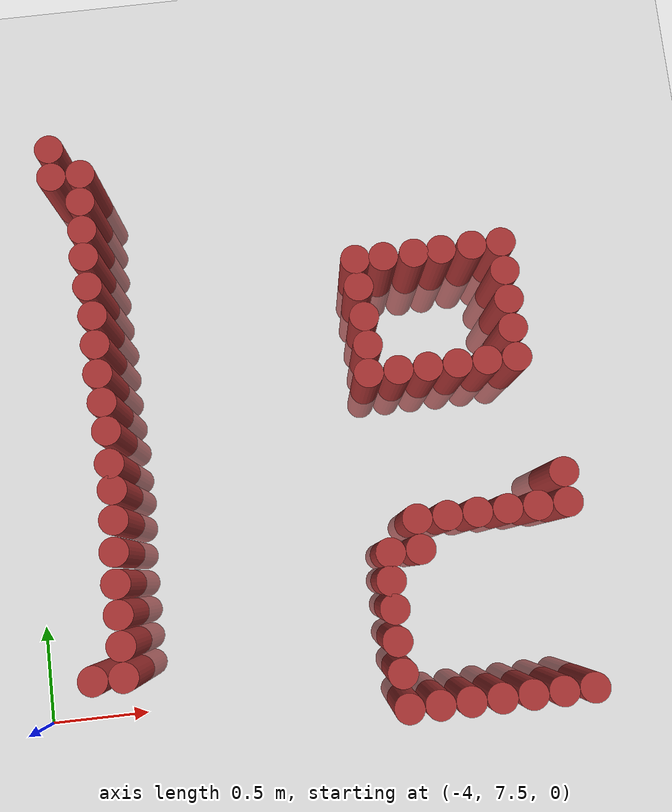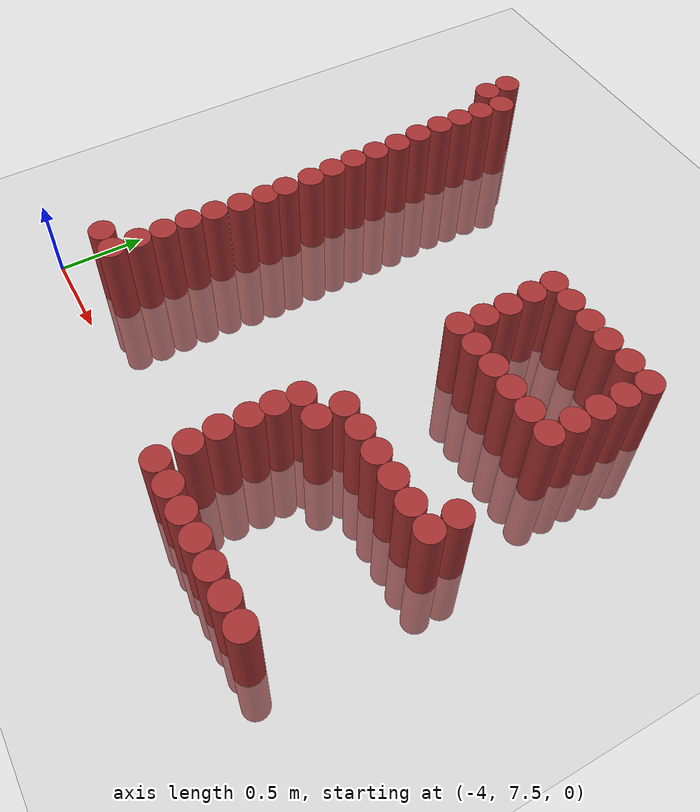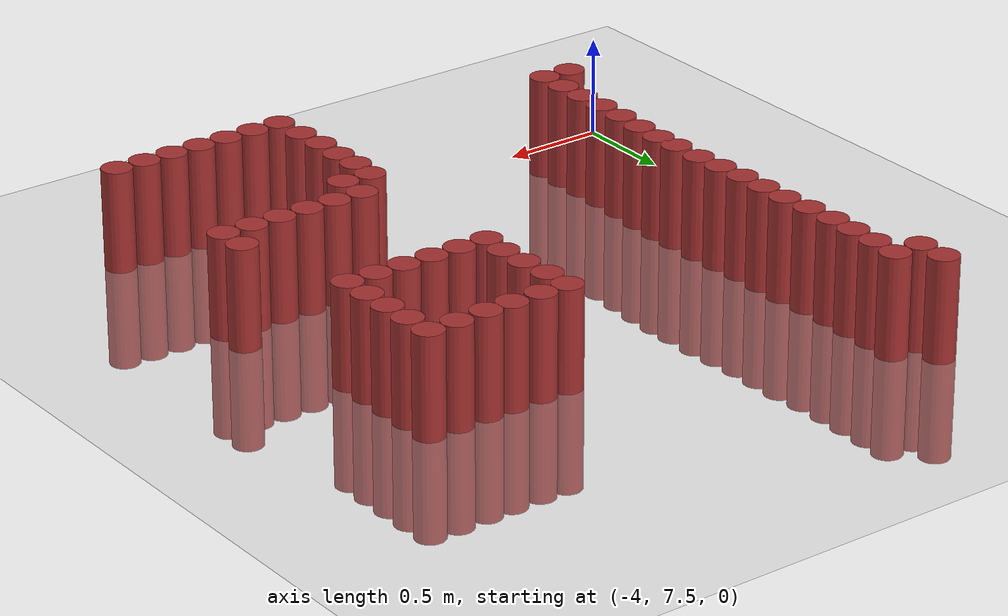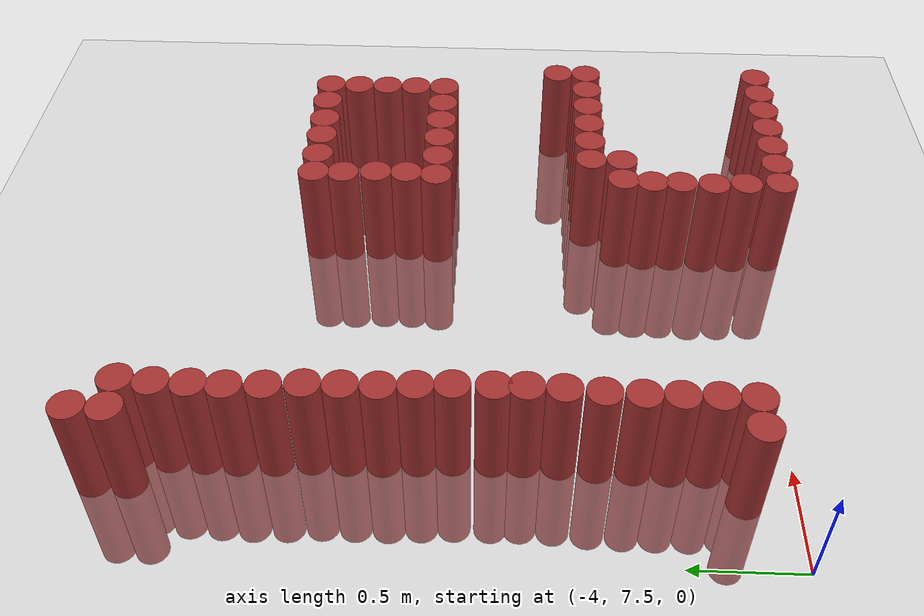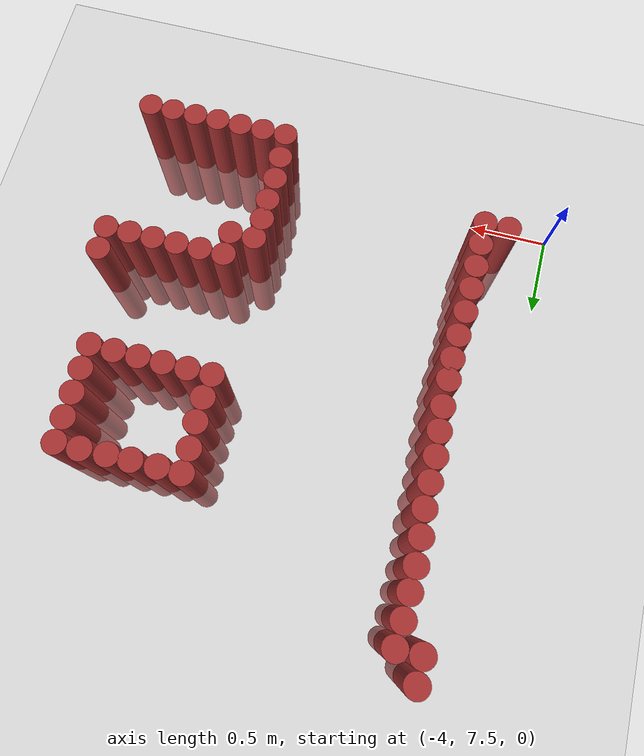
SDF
<sdf version="1.6">
 <world name="default">
  <model name="ground_plane">
   <static>1</static>
   <link name="link">
    <collision name="collision">
     <geometry><plane><normal>0 0 1</normal><size>100 100</size></plane></geometry>
     <surface><friction><ode><mu>100</mu><mu2>50</mu2></ode></friction></surface>
    </collision>
    <visual name="visual">
     <cast_shadows>0</cast_shadows>
     <geometry><plane><normal>0 0 1</normal><size>100 100</size></plane></geometry>
     <material>
      <script><uri>file://media/materials/scripts/gazebo.material</uri><name>Gazebo/Grey</name></script>
     </material>
    </visual>
   </link>
  </model>
  <model name="unit_cylinder_1161">
   <static>1</static>
   <pose>-3.675 7.725 0 0 -0 0</pose>
   <link name="link">
    <inertial>
     <mass>1</mass>
     <inertia><ixx>0.145833</ixx><ixy>0</ixy><ixz>0</ixz><iyy>0.145833</iyy><iyz>0</iyz><izz>0.125</izz></inertia>
    </inertial>
    <collision name="collision">
     <geometry><cylinder><radius>0.075</radius><length>1</length></cylinder></geometry>
    </collision>
    <visual name="visual">
     <geometry><cylinder><radius>0.075</radius><length>1</length></cylinder></geometry>
     <material><ambient>0.648 0.192 0.192 1</ambient><diffuse>0.648 0.192 0.192 1</diffuse></material>
     <material>
      <script><name>Gazebo/Grey</name><uri>file://media/materials/scripts/gazebo.material</uri></script>
     </material>
    </visual>
   </link>
  </model>
  <model name="unit_cylinder_1162">
   <static>1</static>
   <pose>-3.675 10.275 0 0 -0 0</pose>
   <link name="link">
    <inertial>
     <mass>1</mass>
     <inertia><ixx>0.145833</ixx><ixy>0</ixy><ixz>0</ixz><iyy>0.145833</iyy><iyz>0</iyz><izz>0.125</izz></inertia>
    </inertial>
    <collision name="collision">
     <geometry><cylinder><radius>0.075</radius><length>1</length></cylinder></geometry>
    </collision>
    <visual name="visual">
     <geometry><cylinder><radius>0.075</radius><length>1</length></cylinder></geometry>
     <material><ambient>0.648 0.192 0.192 1</ambient><diffuse>0.648 0.192 0.192 1</diffuse></material>
     <material>
      <script><name>Gazebo/Grey</name><uri>file://media/materials/scripts/gazebo.material</uri></script>
     </material>
    </visual>
   </link>
  </model>
  <model name="unit_cylinder_1163">
   <static>1</static>
   <pose>-3.675 10.425 0 0 -0 0</pose>
   <link name="link">
    <inertial>
     <mass>1</mass>
     <inertia><ixx>0.145833</ixx><ixy>0</ixy><ixz>0</ixz><iyy>0.145833</iyy><iyz>0</iyz><izz>0.125</izz></inertia>
    </inertial>
    <collision name="collision">
     <geometry><cylinder><radius>0.075</radius><length>1</length></cylinder></geometry>
    </collision>
    <visual name="visual">
     <geometry><cylinder><radius>0.075</radius><length>1</length></cylinder></geometry>
     <material><ambient>0.648 0.192 0.192 1</ambient><diffuse>0.648 0.192 0.192 1</diffuse></material>
     <material>
      <script><name>Gazebo/Grey</name><uri>file://media/materials/scripts/gazebo.material</uri></script>
     </material>
    </visual>
   </link>
  </model>
  <model name="unit_cylinder_1182">
   <static>1</static>
   <pose>-3.525 7.725 0 0 -0 0</pose>
   <link name="link">
    <inertial>
     <mass>1</mass>
     <inertia><ixx>0.145833</ixx><ixy>0</ixy><ixz>0</ixz><iyy>0.145833</iyy><iyz>0</iyz><izz>0.125</izz></inertia>
    </inertial>
    <collision name="collision">
     <geometry><cylinder><radius>0.075</radius><length>1</length></cylinder></geometry>
    </collision>
    <visual name="visual">
     <geometry><cylinder><radius>0.075</radius><length>1</length></cylinder></geometry>
     <material><ambient>0.648 0.192 0.192 1</ambient><diffuse>0.648 0.192 0.192 1</diffuse></material>
     <material>
      <script><name>Gazebo/Grey</name><uri>file://media/materials/scripts/gazebo.material</uri></script>
     </material>
    </visual>
   </link>
  </model>
  <model name="unit_cylinder_1183">
   <static>1</static>
   <pose>-3.525 7.875 0 0 -0 0</pose>
   <link name="link">
    <inertial>
     <mass>1</mass>
     <inertia><ixx>0.145833</ixx><ixy>0</ixy><ixz>0</ixz><iyy>0.145833</iyy><iyz>0</iyz><izz>0.125</izz></inertia>
    </inertial>
    <collision name="collision">
     <geometry><cylinder><radius>0.075</radius><length>1</length></cylinder></geometry>
    </collision>
    <visual name="visual">
     <geometry><cylinder><radius>0.075</radius><length>1</length></cylinder></geometry>
     <material><ambient>0.648 0.192 0.192 1</ambient><diffuse>0.648 0.192 0.192 1</diffuse></material>
     <material>
      <script><name>Gazebo/Grey</name><uri>file://media/materials/scripts/gazebo.material</uri></script>
     </material>
    </visual>
   </link>
  </model>
  <model name="unit_cylinder_1184">
   <static>1</static>
   <pose>-3.525 8.025 0 0 -0 0</pose>
   <link name="link">
    <inertial>
     <mass>1</mass>
     <inertia><ixx>0.145833</ixx><ixy>0</ixy><ixz>0</ixz><iyy>0.145833</iyy><iyz>0</iyz><izz>0.125</izz></inertia>
    </inertial>
    <collision name="collision">
     <geometry><cylinder><radius>0.075</radius><length>1</length></cylinder></geometry>
    </collision>
    <visual name="visual">
     <geometry><cylinder><radius>0.075</radius><length>1</length></cylinder></geometry>
     <material><ambient>0.648 0.192 0.192 1</ambient><diffuse>0.648 0.192 0.192 1</diffuse></material>
     <material>
      <script><name>Gazebo/Grey</name><uri>file://media/materials/scripts/gazebo.material</uri></script>
     </material>
    </visual>
   </link>
  </model>
  <model name="unit_cylinder_1185">
   <static>1</static>
   <pose>-3.525 8.175 0 0 -0 0</pose>
   <link name="link">
    <inertial>
     <mass>1</mass>
     <inertia><ixx>0.145833</ixx><ixy>0</ixy><ixz>0</ixz><iyy>0.145833</iyy><iyz>0</iyz><izz>0.125</izz></inertia>
    </inertial>
    <collision name="collision">
     <geometry><cylinder><radius>0.075</radius><length>1</length></cylinder></geometry>
    </collision>
    <visual name="visual">
     <geometry><cylinder><radius>0.075</radius><length>1</length></cylinder></geometry>
     <material><ambient>0.648 0.192 0.192 1</ambient><diffuse>0.648 0.192 0.192 1</diffuse></material>
     <material>
      <script><name>Gazebo/Grey</name><uri>file://media/materials/scripts/gazebo.material</uri></script>
     </material>
    </visual>
   </link>
  </model>
  <model name="unit_cylinder_1186">
   <static>1</static>
   <pose>-3.525 9.225 0 0 -0 0</pose>
   <link name="link">
    <inertial>
     <mass>1</mass>
     <inertia><ixx>0.145833</ixx><ixy>0</ixy><ixz>0</ixz><iyy>0.145833</iyy><iyz>0</iyz><izz>0.125</izz></inertia>
    </inertial>
    <collision name="collision">
     <geometry><cylinder><radius>0.075</radius><length>1</length></cylinder></geometry>
    </collision>
    <visual name="visual">
     <geometry><cylinder><radius>0.075</radius><length>1</length></cylinder></geometry>
     <material><ambient>0.648 0.192 0.192 1</ambient><diffuse>0.648 0.192 0.192 1</diffuse></material>
     <material>
      <script><name>Gazebo/Grey</name><uri>file://media/materials/scripts/gazebo.material</uri></script>
     </material>
    </visual>
   </link>
  </model>
  <model name="unit_cylinder_1187">
   <static>1</static>
   <pose>-3.525 9.375 0 0 -0 0</pose>
   <link name="link">
    <inertial>
     <mass>1</mass>
     <inertia><ixx>0.145833</ixx><ixy>0</ixy><ixz>0</ixz><iyy>0.145833</iyy><iyz>0</iyz><izz>0.125</izz></inertia>
    </inertial>
    <collision name="collision">
     <geometry><cylinder><radius>0.075</radius><length>1</length></cylinder></geometry>
    </collision>
    <visual name="visual">
     <geometry><cylinder><radius>0.075</radius><length>1</length></cylinder></geometry>
     <material><ambient>0.648 0.192 0.192 1</ambient><diffuse>0.648 0.192 0.192 1</diffuse></material>
     <material>
      <script><name>Gazebo/Grey</name><uri>file://media/materials/scripts/gazebo.material</uri></script>
     </material>
    </visual>
   </link>
  </model>
  <model name="unit_cylinder_1188">
   <static>1</static>
   <pose>-3.525 9.525 0 0 -0 0</pose>
   <link name="link">
    <inertial>
     <mass>1</mass>
     <inertia><ixx>0.145833</ixx><ixy>0</ixy><ixz>0</ixz><iyy>0.145833</iyy><iyz>0</iyz><izz>0.125</izz></inertia>
    </inertial>
    <collision name="collision">
     <geometry><cylinder><radius>0.075</radius><length>1</length></cylinder></geometry>
    </collision>
    <visual name="visual">
     <geometry><cylinder><radius>0.075</radius><length>1</length></cylinder></geometry>
     <material><ambient>0.648 0.192 0.192 1</ambient><diffuse>0.648 0.192 0.192 1</diffuse></material>
     <material>
      <script><name>Gazebo/Grey</name><uri>file://media/materials/scripts/gazebo.material</uri></script>
     </material>
    </visual>
   </link>
  </model>
  <model name="unit_cylinder_1189">
   <static>1</static>
   <pose>-3.525 10.275 0 0 -0 0</pose>
   <link name="link">
    <inertial>
     <mass>1</mass>
     <inertia><ixx>0.145833</ixx><ixy>0</ixy><ixz>0</ixz><iyy>0.145833</iyy><iyz>0</iyz><izz>0.125</izz></inertia>
    </inertial>
    <collision name="collision">
     <geometry><cylinder><radius>0.075</radius><length>1</length></cylinder></geometry>
    </collision>
    <visual name="visual">
     <geometry><cylinder><radius>0.075</radius><length>1</length></cylinder></geometry>
     <material><ambient>0.648 0.192 0.192 1</ambient><diffuse>0.648 0.192 0.192 1</diffuse></material>
     <material>
      <script><name>Gazebo/Grey</name><uri>file://media/materials/scripts/gazebo.material</uri></script>
     </material>
    </visual>
   </link>
  </model>
  <model name="unit_cylinder_1312">
   <static>1</static>
   <pose>-2.175 7.425 0 0 -0 0</pose>
   <link name="link">
    <inertial>
     <mass>1</mass>
     <inertia><ixx>0.145833</ixx><ixy>0</ixy><ixz>0</ixz><iyy>0.145833</iyy><iyz>0</iyz><izz>0.125</izz></inertia>
    </inertial>
    <collision name="collision">
     <geometry><cylinder><radius>0.075</radius><length>1</length></cylinder></geometry>
    </collision>
    <visual name="visual">
     <geometry><cylinder><radius>0.075</radius><length>1</length></cylinder></geometry>
     <material><ambient>0.648 0.192 0.192 1</ambient><diffuse>0.648 0.192 0.192 1</diffuse></material>
     <material>
      <script><name>Gazebo/Grey</name><uri>file://media/materials/scripts/gazebo.material</uri></script>
     </material>
    </visual>
   </link>
  </model>
  <model name="unit_cylinder_1313">
   <static>1</static>
   <pose>-2.175 8.175 0 0 -0 0</pose>
   <link name="link">
    <inertial>
     <mass>1</mass>
     <inertia><ixx>0.145833</ixx><ixy>0</ixy><ixz>0</ixz><iyy>0.145833</iyy><iyz>0</iyz><izz>0.125</izz></inertia>
    </inertial>
    <collision name="collision">
     <geometry><cylinder><radius>0.075</radius><length>1</length></cylinder></geometry>
    </collision>
    <visual name="visual">
     <geometry><cylinder><radius>0.075</radius><length>1</length></cylinder></geometry>
     <material><ambient>0.648 0.192 0.192 1</ambient><diffuse>0.648 0.192 0.192 1</diffuse></material>
     <material>
      <script><name>Gazebo/Grey</name><uri>file://media/materials/scripts/gazebo.material</uri></script>
     </material>
    </visual>
   </link>
  </model>
  <model name="unit_cylinder_1314">
   <static>1</static>
   <pose>-2.175 9.075 0 0 -0 0</pose>
   <link name="link">
    <inertial>
     <mass>1</mass>
     <inertia><ixx>0.145833</ixx><ixy>0</ixy><ixz>0</ixz><iyy>0.145833</iyy><iyz>0</iyz><izz>0.125</izz></inertia>
    </inertial>
    <collision name="collision">
     <geometry><cylinder><radius>0.075</radius><length>1</length></cylinder></geometry>
    </collision>
    <visual name="visual">
     <geometry><cylinder><radius>0.075</radius><length>1</length></cylinder></geometry>
     <material><ambient>0.648 0.192 0.192 1</ambient><diffuse>0.648 0.192 0.192 1</diffuse></material>
     <material>
      <script><name>Gazebo/Grey</name><uri>file://media/materials/scripts/gazebo.material</uri></script>
     </material>
    </visual>
   </link>
  </model>
  <model name="unit_cylinder_1323">
   <static>1</static>
   <pose>-2.025 7.425 0 0 -0 0</pose>
   <link name="link">
    <inertial>
     <mass>1</mass>
     <inertia><ixx>0.145833</ixx><ixy>0</ixy><ixz>0</ixz><iyy>0.145833</iyy><iyz>0</iyz><izz>0.125</izz></inertia>
    </inertial>
    <collision name="collision">
     <geometry><cylinder><radius>0.075</radius><length>1</length></cylinder></geometry>
    </collision>
    <visual name="visual">
     <geometry><cylinder><radius>0.075</radius><length>1</length></cylinder></geometry>
     <material><ambient>0.648 0.192 0.192 1</ambient><diffuse>0.648 0.192 0.192 1</diffuse></material>
     <material>
      <script><name>Gazebo/Grey</name><uri>file://media/materials/scripts/gazebo.material</uri></script>
     </material>
    </visual>
   </link>
  </model>
  <model name="unit_cylinder_1324">
   <static>1</static>
   <pose>-2.025 8.175 0 0 -0 0</pose>
   <link name="link">
    <inertial>
     <mass>1</mass>
     <inertia><ixx>0.145833</ixx><ixy>0</ixy><ixz>0</ixz><iyy>0.145833</iyy><iyz>0</iyz><izz>0.125</izz></inertia>
    </inertial>
    <collision name="collision">
     <geometry><cylinder><radius>0.075</radius><length>1</length></cylinder></geometry>
    </collision>
    <visual name="visual">
     <geometry><cylinder><radius>0.075</radius><length>1</length></cylinder></geometry>
     <material><ambient>0.648 0.192 0.192 1</ambient><diffuse>0.648 0.192 0.192 1</diffuse></material>
     <material>
      <script><name>Gazebo/Grey</name><uri>file://media/materials/scripts/gazebo.material</uri></script>
     </material>
    </visual>
   </link>
  </model>
  <model name="unit_cylinder_1325">
   <static>1</static>
   <pose>-2.025 8.325 0 0 -0 0</pose>
   <link name="link">
    <inertial>
     <mass>1</mass>
     <inertia><ixx>0.145833</ixx><ixy>0</ixy><ixz>0</ixz><iyy>0.145833</iyy><iyz>0</iyz><izz>0.125</izz></inertia>
    </inertial>
    <collision name="collision">
     <geometry><cylinder><radius>0.075</radius><length>1</length></cylinder></geometry>
    </collision>
    <visual name="visual">
     <geometry><cylinder><radius>0.075</radius><length>1</length></cylinder></geometry>
     <material><ambient>0.648 0.192 0.192 1</ambient><diffuse>0.648 0.192 0.192 1</diffuse></material>
     <material>
      <script><name>Gazebo/Grey</name><uri>file://media/materials/scripts/gazebo.material</uri></script>
     </material>
    </visual>
   </link>
  </model>
  <model name="unit_cylinder_1326">
   <static>1</static>
   <pose>-2.025 9.075 0 0 -0 0</pose>
   <link name="link">
    <inertial>
     <mass>1</mass>
     <inertia><ixx>0.145833</ixx><ixy>0</ixy><ixz>0</ixz><iyy>0.145833</iyy><iyz>0</iyz><izz>0.125</izz></inertia>
    </inertial>
    <collision name="collision">
     <geometry><cylinder><radius>0.075</radius><length>1</length></cylinder></geometry>
    </collision>
    <visual name="visual">
     <geometry><cylinder><radius>0.075</radius><length>1</length></cylinder></geometry>
     <material><ambient>0.648 0.192 0.192 1</ambient><diffuse>0.648 0.192 0.192 1</diffuse></material>
     <material>
      <script><name>Gazebo/Grey</name><uri>file://media/materials/scripts/gazebo.material</uri></script>
     </material>
    </visual>
   </link>
  </model>
  <model name="unit_cylinder_1337">
   <static>1</static>
   <pose>-1.875 7.425 0 0 -0 0</pose>
   <link name="link">
    <inertial>
     <mass>1</mass>
     <inertia><ixx>0.145833</ixx><ixy>0</ixy><ixz>0</ixz><iyy>0.145833</iyy><iyz>0</iyz><izz>0.125</izz></inertia>
    </inertial>
    <collision name="collision">
     <geometry><cylinder><radius>0.075</radius><length>1</length></cylinder></geometry>
    </collision>
    <visual name="visual">
     <geometry><cylinder><radius>0.075</radius><length>1</length></cylinder></geometry>
     <material><ambient>0.648 0.192 0.192 1</ambient><diffuse>0.648 0.192 0.192 1</diffuse></material>
     <material>
      <script><name>Gazebo/Grey</name><uri>file://media/materials/scripts/gazebo.material</uri></script>
     </material>
    </visual>
   </link>
  </model>
  <model name="unit_cylinder_1338">
   <static>1</static>
   <pose>-1.875 8.325 0 0 -0 0</pose>
   <link name="link">
    <inertial>
     <mass>1</mass>
     <inertia><ixx>0.145833</ixx><ixy>0</ixy><ixz>0</ixz><iyy>0.145833</iyy><iyz>0</iyz><izz>0.125</izz></inertia>
    </inertial>
    <collision name="collision">
     <geometry><cylinder><radius>0.075</radius><length>1</length></cylinder></geometry>
    </collision>
    <visual name="visual">
     <geometry><cylinder><radius>0.075</radius><length>1</length></cylinder></geometry>
     <material><ambient>0.648 0.192 0.192 1</ambient><diffuse>0.648 0.192 0.192 1</diffuse></material>
     <material>
      <script><name>Gazebo/Grey</name><uri>file://media/materials/scripts/gazebo.material</uri></script>
     </material>
    </visual>
   </link>
  </model>
  <model name="unit_cylinder_1339">
   <static>1</static>
   <pose>-1.875 9.075 0 0 -0 0</pose>
   <link name="link">
    <inertial>
     <mass>1</mass>
     <inertia><ixx>0.145833</ixx><ixy>0</ixy><ixz>0</ixz><iyy>0.145833</iyy><iyz>0</iyz><izz>0.125</izz></inertia>
    </inertial>
    <collision name="collision">
     <geometry><cylinder><radius>0.075</radius><length>1</length></cylinder></geometry>
    </collision>
    <visual name="visual">
     <geometry><cylinder><radius>0.075</radius><length>1</length></cylinder></geometry>
     <material><ambient>0.648 0.192 0.192 1</ambient><diffuse>0.648 0.192 0.192 1</diffuse></material>
     <material>
      <script><name>Gazebo/Grey</name><uri>file://media/materials/scripts/gazebo.material</uri></script>
     </material>
    </visual>
   </link>
  </model>
  <model name="unit_cylinder_1350">
   <static>1</static>
   <pose>-1.725 7.425 0 0 -0 0</pose>
   <link name="link">
    <inertial>
     <mass>1</mass>
     <inertia><ixx>0.145833</ixx><ixy>0</ixy><ixz>0</ixz><iyy>0.145833</iyy><iyz>0</iyz><izz>0.125</izz></inertia>
    </inertial>
    <collision name="collision">
     <geometry><cylinder><radius>0.075</radius><length>1</length></cylinder></geometry>
    </collision>
    <visual name="visual">
     <geometry><cylinder><radius>0.075</radius><length>1</length></cylinder></geometry>
     <material><ambient>0.648 0.192 0.192 1</ambient><diffuse>0.648 0.192 0.192 1</diffuse></material>
     <material>
      <script><name>Gazebo/Grey</name><uri>file://media/materials/scripts/gazebo.material</uri></script>
     </material>
    </visual>
   </link>
  </model>
  <model name="unit_cylinder_1351">
   <static>1</static>
   <pose>-1.725 8.325 0 0 -0 0</pose>
   <link name="link">
    <inertial>
     <mass>1</mass>
     <inertia><ixx>0.145833</ixx><ixy>0</ixy><ixz>0</ixz><iyy>0.145833</iyy><iyz>0</iyz><izz>0.125</izz></inertia>
    </inertial>
    <collision name="collision">
     <geometry><cylinder><radius>0.075</radius><length>1</length></cylinder></geometry>
    </collision>
    <visual name="visual">
     <geometry><cylinder><radius>0.075</radius><length>1</length></cylinder></geometry>
     <material><ambient>0.648 0.192 0.192 1</ambient><diffuse>0.648 0.192 0.192 1</diffuse></material>
     <material>
      <script><name>Gazebo/Grey</name><uri>file://media/materials/scripts/gazebo.material</uri></script>
     </material>
    </visual>
   </link>
  </model>
  <model name="unit_cylinder_1352">
   <static>1</static>
   <pose>-1.725 9.075 0 0 -0 0</pose>
   <link name="link">
    <inertial>
     <mass>1</mass>
     <inertia><ixx>0.145833</ixx><ixy>0</ixy><ixz>0</ixz><iyy>0.145833</iyy><iyz>0</iyz><izz>0.125</izz></inertia>
    </inertial>
    <collision name="collision">
     <geometry><cylinder><radius>0.075</radius><length>1</length></cylinder></geometry>
    </collision>
    <visual name="visual">
     <geometry><cylinder><radius>0.075</radius><length>1</length></cylinder></geometry>
     <material><ambient>0.648 0.192 0.192 1</ambient><diffuse>0.648 0.192 0.192 1</diffuse></material>
     <material>
      <script><name>Gazebo/Grey</name><uri>file://media/materials/scripts/gazebo.material</uri></script>
     </material>
    </visual>
   </link>
  </model>
  <model name="unit_cylinder_1371">
   <static>1</static>
   <pose>-1.575 7.425 0 0 -0 0</pose>
   <link name="link">
    <inertial>
     <mass>1</mass>
     <inertia><ixx>0.145833</ixx><ixy>0</ixy><ixz>0</ixz><iyy>0.145833</iyy><iyz>0</iyz><izz>0.125</izz></inertia>
    </inertial>
    <collision name="collision">
     <geometry><cylinder><radius>0.075</radius><length>1</length></cylinder></geometry>
    </collision>
    <visual name="visual">
     <geometry><cylinder><radius>0.075</radius><length>1</length></cylinder></geometry>
     <material><ambient>0.648 0.192 0.192 1</ambient><diffuse>0.648 0.192 0.192 1</diffuse></material>
     <material>
      <script><name>Gazebo/Grey</name><uri>file://media/materials/scripts/gazebo.material</uri></script>
     </material>
    </visual>
   </link>
  </model>
  <model name="unit_cylinder_1372">
   <static>1</static>
   <pose>-1.575 8.325 0 0 -0 0</pose>
   <link name="link">
    <inertial>
     <mass>1</mass>
     <inertia><ixx>0.145833</ixx><ixy>0</ixy><ixz>0</ixz><iyy>0.145833</iyy><iyz>0</iyz><izz>0.125</izz></inertia>
    </inertial>
    <collision name="collision">
     <geometry><cylinder><radius>0.075</radius><length>1</length></cylinder></geometry>
    </collision>
    <visual name="visual">
     <geometry><cylinder><radius>0.075</radius><length>1</length></cylinder></geometry>
     <material><ambient>0.648 0.192 0.192 1</ambient><diffuse>0.648 0.192 0.192 1</diffuse></material>
     <material>
      <script><name>Gazebo/Grey</name><uri>file://media/materials/scripts/gazebo.material</uri></script>
     </material>
    </visual>
   </link>
  </model>
  <model name="unit_cylinder_1373">
   <static>1</static>
   <pose>-1.575 9.075 0 0 -0 0</pose>
   <link name="link">
    <inertial>
     <mass>1</mass>
     <inertia><ixx>0.145833</ixx><ixy>0</ixy><ixz>0</ixz><iyy>0.145833</iyy><iyz>0</iyz><izz>0.125</izz></inertia>
    </inertial>
    <collision name="collision">
     <geometry><cylinder><radius>0.075</radius><length>1</length></cylinder></geometry>
    </collision>
    <visual name="visual">
     <geometry><cylinder><radius>0.075</radius><length>1</length></cylinder></geometry>
     <material><ambient>0.648 0.192 0.192 1</ambient><diffuse>0.648 0.192 0.192 1</diffuse></material>
     <material>
      <script><name>Gazebo/Grey</name><uri>file://media/materials/scripts/gazebo.material</uri></script>
     </material>
    </visual>
   </link>
  </model>
  <model name="unit_cylinder_1374">
   <static>1</static>
   <pose>-1.575 9.675 0 0 -0 0</pose>
   <link name="link">
    <inertial>
     <mass>1</mass>
     <inertia><ixx>0.145833</ixx><ixy>0</ixy><ixz>0</ixz><iyy>0.145833</iyy><iyz>0</iyz><izz>0.125</izz></inertia>
    </inertial>
    <collision name="collision">
     <geometry><cylinder><radius>0.075</radius><length>1</length></cylinder></geometry>
    </collision>
    <visual name="visual">
     <geometry><cylinder><radius>0.075</radius><length>1</length></cylinder></geometry>
     <material><ambient>0.648 0.192 0.192 1</ambient><diffuse>0.648 0.192 0.192 1</diffuse></material>
     <material>
      <script><name>Gazebo/Grey</name><uri>file://media/materials/scripts/gazebo.material</uri></script>
     </material>
    </visual>
   </link>
  </model>
  <model name="unit_cylinder_1390">
   <static>1</static>
   <pose>-1.425 7.425 0 0 -0 0</pose>
   <link name="link">
    <inertial>
     <mass>1</mass>
     <inertia><ixx>0.145833</ixx><ixy>0</ixy><ixz>0</ixz><iyy>0.145833</iyy><iyz>0</iyz><izz>0.125</izz></inertia>
    </inertial>
    <collision name="collision">
     <geometry><cylinder><radius>0.075</radius><length>1</length></cylinder></geometry>
    </collision>
    <visual name="visual">
     <geometry><cylinder><radius>0.075</radius><length>1</length></cylinder></geometry>
     <material><ambient>0.648 0.192 0.192 1</ambient><diffuse>0.648 0.192 0.192 1</diffuse></material>
     <material>
      <script><name>Gazebo/Grey</name><uri>file://media/materials/scripts/gazebo.material</uri></script>
     </material>
    </visual>
   </link>
  </model>
  <model name="unit_cylinder_1391">
   <static>1</static>
   <pose>-1.425 8.325 0 0 -0 0</pose>
   <link name="link">
    <inertial>
     <mass>1</mass>
     <inertia><ixx>0.145833</ixx><ixy>0</ixy><ixz>0</ixz><iyy>0.145833</iyy><iyz>0</iyz><izz>0.125</izz></inertia>
    </inertial>
    <collision name="collision">
     <geometry><cylinder><radius>0.075</radius><length>1</length></cylinder></geometry>
    </collision>
    <visual name="visual">
     <geometry><cylinder><radius>0.075</radius><length>1</length></cylinder></geometry>
     <material><ambient>0.648 0.192 0.192 1</ambient><diffuse>0.648 0.192 0.192 1</diffuse></material>
     <material>
      <script><name>Gazebo/Grey</name><uri>file://media/materials/scripts/gazebo.material</uri></script>
     </material>
    </visual>
   </link>
  </model>
  <model name="unit_cylinder_1392">
   <static>1</static>
   <pose>-1.425 9.075 0 0 -0 0</pose>
   <link name="link">
    <inertial>
     <mass>1</mass>
     <inertia><ixx>0.145833</ixx><ixy>0</ixy><ixz>0</ixz><iyy>0.145833</iyy><iyz>0</iyz><izz>0.125</izz></inertia>
    </inertial>
    <collision name="collision">
     <geometry><cylinder><radius>0.075</radius><length>1</length></cylinder></geometry>
    </collision>
    <visual name="visual">
     <geometry><cylinder><radius>0.075</radius><length>1</length></cylinder></geometry>
     <material><ambient>0.648 0.192 0.192 1</ambient><diffuse>0.648 0.192 0.192 1</diffuse></material>
     <material>
      <script><name>Gazebo/Grey</name><uri>file://media/materials/scripts/gazebo.material</uri></script>
     </material>
    </visual>
   </link>
  </model>
  <model name="unit_cylinder_1393">
   <static>1</static>
   <pose>-1.425 9.225 0 0 -0 0</pose>
   <link name="link">
    <inertial>
     <mass>1</mass>
     <inertia><ixx>0.145833</ixx><ixy>0</ixy><ixz>0</ixz><iyy>0.145833</iyy><iyz>0</iyz><izz>0.125</izz></inertia>
    </inertial>
    <collision name="collision">
     <geometry><cylinder><radius>0.075</radius><length>1</length></cylinder></geometry>
    </collision>
    <visual name="visual">
     <geometry><cylinder><radius>0.075</radius><length>1</length></cylinder></geometry>
     <material><ambient>0.648 0.192 0.192 1</ambient><diffuse>0.648 0.192 0.192 1</diffuse></material>
     <material>
      <script><name>Gazebo/Grey</name><uri>file://media/materials/scripts/gazebo.material</uri></script>
     </material>
    </visual>
   </link>
  </model>
  <model name="unit_cylinder_1394">
   <static>1</static>
   <pose>-1.425 9.375 0 0 -0 0</pose>
   <link name="link">
    <inertial>
     <mass>1</mass>
     <inertia><ixx>0.145833</ixx><ixy>0</ixy><ixz>0</ixz><iyy>0.145833</iyy><iyz>0</iyz><izz>0.125</izz></inertia>
    </inertial>
    <collision name="collision">
     <geometry><cylinder><radius>0.075</radius><length>1</length></cylinder></geometry>
    </collision>
    <visual name="visual">
     <geometry><cylinder><radius>0.075</radius><length>1</length></cylinder></geometry>
     <material><ambient>0.648 0.192 0.192 1</ambient><diffuse>0.648 0.192 0.192 1</diffuse></material>
     <material>
      <script><name>Gazebo/Grey</name><uri>file://media/materials/scripts/gazebo.material</uri></script>
     </material>
    </visual>
   </link>
  </model>
  <model name="unit_cylinder_1395">
   <static>1</static>
   <pose>-1.425 9.525 0 0 -0 0</pose>
   <link name="link">
    <inertial>
     <mass>1</mass>
     <inertia><ixx>0.145833</ixx><ixy>0</ixy><ixz>0</ixz><iyy>0.145833</iyy><iyz>0</iyz><izz>0.125</izz></inertia>
    </inertial>
    <collision name="collision">
     <geometry><cylinder><radius>0.075</radius><length>1</length></cylinder></geometry>
    </collision>
    <visual name="visual">
     <geometry><cylinder><radius>0.075</radius><length>1</length></cylinder></geometry>
     <material><ambient>0.648 0.192 0.192 1</ambient><diffuse>0.648 0.192 0.192 1</diffuse></material>
     <material>
      <script><name>Gazebo/Grey</name><uri>file://media/materials/scripts/gazebo.material</uri></script>
     </material>
    </visual>
   </link>
  </model>
  <model name="unit_cylinder_1396">
   <static>1</static>
   <pose>-1.425 9.675 0 0 -0 0</pose>
   <link name="link">
    <inertial>
     <mass>1</mass>
     <inertia><ixx>0.145833</ixx><ixy>0</ixy><ixz>0</ixz><iyy>0.145833</iyy><iyz>0</iyz><izz>0.125</izz></inertia>
    </inertial>
    <collision name="collision">
     <geometry><cylinder><radius>0.075</radius><length>1</length></cylinder></geometry>
    </collision>
    <visual name="visual">
     <geometry><cylinder><radius>0.075</radius><length>1</length></cylinder></geometry>
     <material><ambient>0.648 0.192 0.192 1</ambient><diffuse>0.648 0.192 0.192 1</diffuse></material>
     <material>
      <script><name>Gazebo/Grey</name><uri>file://media/materials/scripts/gazebo.material</uri></script>
     </material>
    </visual>
   </link>
  </model>
  <model name="unit_cylinder_1405">
   <static>1</static>
   <pose>-1.275 7.425 0 0 -0 0</pose>
   <link name="link">
    <inertial>
     <mass>1</mass>
     <inertia><ixx>0.145833</ixx><ixy>0</ixy><ixz>0</ixz><iyy>0.145833</iyy><iyz>0</iyz><izz>0.125</izz></inertia>
    </inertial>
    <collision name="collision">
     <geometry><cylinder><radius>0.075</radius><length>1</length></cylinder></geometry>
    </collision>
    <visual name="visual">
     <geometry><cylinder><radius>0.075</radius><length>1</length></cylinder></geometry>
     <material><ambient>0.648 0.192 0.192 1</ambient><diffuse>0.648 0.192 0.192 1</diffuse></material>
     <material>
      <script><name>Gazebo/Grey</name><uri>file://media/materials/scripts/gazebo.material</uri></script>
     </material>
    </visual>
   </link>
  </model>
  <model name="unit_cylinder_1406">
   <static>1</static>
   <pose>-1.275 8.325 0 0 -0 0</pose>
   <link name="link">
    <inertial>
     <mass>1</mass>
     <inertia><ixx>0.145833</ixx><ixy>0</ixy><ixz>0</ixz><iyy>0.145833</iyy><iyz>0</iyz><izz>0.125</izz></inertia>
    </inertial>
    <collision name="collision">
     <geometry><cylinder><radius>0.075</radius><length>1</length></cylinder></geometry>
    </collision>
    <visual name="visual">
     <geometry><cylinder><radius>0.075</radius><length>1</length></cylinder></geometry>
     <material><ambient>0.648 0.192 0.192 1</ambient><diffuse>0.648 0.192 0.192 1</diffuse></material>
     <material>
      <script><name>Gazebo/Grey</name><uri>file://media/materials/scripts/gazebo.material</uri></script>
     </material>
    </visual>
   </link>
  </model>
  <model name="unit_cylinder_1407">
   <static>1</static>
   <pose>-1.275 8.475 0 0 -0 0</pose>
   <link name="link">
    <inertial>
     <mass>1</mass>
     <inertia><ixx>0.145833</ixx><ixy>0</ixy><ixz>0</ixz><iyy>0.145833</iyy><iyz>0</iyz><izz>0.125</izz></inertia>
    </inertial>
    <collision name="collision">
     <geometry><cylinder><radius>0.075</radius><length>1</length></cylinder></geometry>
    </collision>
    <visual name="visual">
     <geometry><cylinder><radius>0.075</radius><length>1</length></cylinder></geometry>
     <material><ambient>0.648 0.192 0.192 1</ambient><diffuse>0.648 0.192 0.192 1</diffuse></material>
     <material>
      <script><name>Gazebo/Grey</name><uri>file://media/materials/scripts/gazebo.material</uri></script>
     </material>
    </visual>
   </link>
  </model>
  <model name="unit_cylinder_1315_clone">
   <static>1</static>
   <pose>-2.17347 9.66697 0 0 -0 0</pose>
   <link name="link">
    <inertial>
     <mass>1</mass>
     <inertia><ixx>0.145833</ixx><ixy>0</ixy><ixz>0</ixz><iyy>0.145833</iyy><iyz>0</iyz><izz>0.125</izz></inertia>
    </inertial>
    <collision name="collision">
     <geometry><cylinder><radius>0.075</radius><length>1</length></cylinder></geometry>
    </collision>
    <visual name="visual">
     <geometry><cylinder><radius>0.075</radius><length>1</length></cylinder></geometry>
     <material><ambient>0.648 0.192 0.192 1</ambient><diffuse>0.648 0.192 0.192 1</diffuse></material>
     <material>
      <script><name>Gazebo/Grey</name><uri>file://media/materials/scripts/gazebo.material</uri></script>
     </material>
    </visual>
   </link>
  </model>
  <model name="unit_cylinder_1315_clone_0">
   <static>1</static>
   <pose>-2.17272 9.52354 0 0 -0 0</pose>
   <link name="link">
    <inertial>
     <mass>1</mass>
     <inertia><ixx>0.145833</ixx><ixy>0</ixy><ixz>0</ixz><iyy>0.145833</iyy><iyz>0</iyz><izz>0.125</izz></inertia>
    </inertial>
    <collision name="collision">
     <geometry><cylinder><radius>0.075</radius><length>1</length></cylinder></geometry>
    </collision>
    <visual name="visual">
     <geometry><cylinder><radius>0.075</radius><length>1</length></cylinder></geometry>
     <material><ambient>0.648 0.192 0.192 1</ambient><diffuse>0.648 0.192 0.192 1</diffuse></material>
     <material>
      <script><name>Gazebo/Grey</name><uri>file://media/materials/scripts/gazebo.material</uri></script>
     </material>
    </visual>
   </link>
  </model>
  <model name="unit_cylinder_1315_clone_1">
   <static>1</static>
   <pose>-2.16266 9.36651 0 0 -0 0</pose>
   <link name="link">
    <inertial>
     <mass>1</mass>
     <inertia><ixx>0.145833</ixx><ixy>0</ixy><ixz>0</ixz><iyy>0.145833</iyy><iyz>0</iyz><izz>0.125</izz></inertia>
    </inertial>
    <collision name="collision">
     <geometry><cylinder><radius>0.075</radius><length>1</length></cylinder></geometry>
    </collision>
    <visual name="visual">
     <geometry><cylinder><radius>0.075</radius><length>1</length></cylinder></geometry>
     <material><ambient>0.648 0.192 0.192 1</ambient><diffuse>0.648 0.192 0.192 1</diffuse></material>
     <material>
      <script><name>Gazebo/Grey</name><uri>file://media/materials/scripts/gazebo.material</uri></script>
     </material>
    </visual>
   </link>
  </model>
  <model name="unit_cylinder_1315_clone_2">
   <static>1</static>
   <pose>-2.1619 9.21889 0 0 -0 0</pose>
   <link name="link">
    <inertial>
     <mass>1</mass>
     <inertia><ixx>0.145833</ixx><ixy>0</ixy><ixz>0</ixz><iyy>0.145833</iyy><iyz>0</iyz><izz>0.125</izz></inertia>
    </inertial>
    <collision name="collision">
     <geometry><cylinder><radius>0.075</radius><length>1</length></cylinder></geometry>
    </collision>
    <visual name="visual">
     <geometry><cylinder><radius>0.075</radius><length>1</length></cylinder></geometry>
     <material><ambient>0.648 0.192 0.192 1</ambient><diffuse>0.648 0.192 0.192 1</diffuse></material>
     <material>
      <script><name>Gazebo/Grey</name><uri>file://media/materials/scripts/gazebo.material</uri></script>
     </material>
    </visual>
   </link>
  </model>
  <model name="unit_cylinder_1186_clone">
   <static>1</static>
   <pose>-3.51549 9.07779 0 0 -0 0</pose>
   <link name="link">
    <inertial>
     <mass>1</mass>
     <inertia><ixx>0.145833</ixx><ixy>0</ixy><ixz>0</ixz><iyy>0.145833</iyy><iyz>0</iyz><izz>0.125</izz></inertia>
    </inertial>
    <collision name="collision">
     <geometry><cylinder><radius>0.075</radius><length>1</length></cylinder></geometry>
    </collision>
    <visual name="visual">
     <geometry><cylinder><radius>0.075</radius><length>1</length></cylinder></geometry>
     <material><ambient>0.648 0.192 0.192 1</ambient><diffuse>0.648 0.192 0.192 1</diffuse></material>
     <material>
      <script><name>Gazebo/Grey</name><uri>file://media/materials/scripts/gazebo.material</uri></script>
     </material>
    </visual>
   </link>
  </model>
  <model name="unit_cylinder_1186_clone_0">
   <static>1</static>
   <pose>-3.50601 8.93159 0 0 -0 0</pose>
   <link name="link">
    <inertial>
     <mass>1</mass>
     <inertia><ixx>0.145833</ixx><ixy>0</ixy><ixz>0</ixz><iyy>0.145833</iyy><iyz>0</iyz><izz>0.125</izz></inertia>
    </inertial>
    <collision name="collision">
     <geometry><cylinder><radius>0.075</radius><length>1</length></cylinder></geometry>
    </collision>
    <visual name="visual">
     <geometry><cylinder><radius>0.075</radius><length>1</length></cylinder></geometry>
     <material><ambient>0.648 0.192 0.192 1</ambient><diffuse>0.648 0.192 0.192 1</diffuse></material>
     <material>
      <script><name>Gazebo/Grey</name><uri>file://media/materials/scripts/gazebo.material</uri></script>
     </material>
    </visual>
   </link>
  </model>
  <model name="unit_cylinder_1186_clone_4">
   <static>1</static>
   <pose>-3.52003 8.33049 0 0 -0 0</pose>
   <link name="link">
    <inertial>
     <mass>1</mass>
     <inertia><ixx>0.145833</ixx><ixy>0</ixy><ixz>0</ixz><iyy>0.145833</iyy><iyz>0</iyz><izz>0.125</izz></inertia>
    </inertial>
    <collision name="collision">
     <geometry><cylinder><radius>0.075</radius><length>1</length></cylinder></geometry>
    </collision>
    <visual name="visual">
     <geometry><cylinder><radius>0.075</radius><length>1</length></cylinder></geometry>
     <material><ambient>0.648 0.192 0.192 1</ambient><diffuse>0.648 0.192 0.192 1</diffuse></material>
     <material>
      <script><name>Gazebo/Grey</name><uri>file://media/materials/scripts/gazebo.material</uri></script>
     </material>
    </visual>
   </link>
  </model>
  <model name="unit_cylinder_1186_clone_1">
   <static>1</static>
   <pose>-3.50833 8.48639 0 0 -0 0</pose>
   <link name="link">
    <inertial>
     <mass>1</mass>
     <inertia><ixx>0.145833</ixx><ixy>0</ixy><ixz>0</ixz><iyy>0.145833</iyy><iyz>0</iyz><izz>0.125</izz></inertia>
    </inertial>
    <collision name="collision">
     <geometry><cylinder><radius>0.075</radius><length>1</length></cylinder></geometry>
    </collision>
    <visual name="visual">
     <geometry><cylinder><radius>0.075</radius><length>1</length></cylinder></geometry>
     <material><ambient>0.648 0.192 0.192 1</ambient><diffuse>0.648 0.192 0.192 1</diffuse></material>
     <material>
      <script><name>Gazebo/Grey</name><uri>file://media/materials/scripts/gazebo.material</uri></script>
     </material>
    </visual>
   </link>
  </model>
  <model name="unit_cylinder_1186_clone_2">
   <static>1</static>
   <pose>-3.50277 8.63632 0 0 -0 0</pose>
   <link name="link">
    <inertial>
     <mass>1</mass>
     <inertia><ixx>0.145833</ixx><ixy>0</ixy><ixz>0</ixz><iyy>0.145833</iyy><iyz>0</iyz><izz>0.125</izz></inertia>
    </inertial>
    <collision name="collision">
     <geometry><cylinder><radius>0.075</radius><length>1</length></cylinder></geometry>
    </collision>
    <visual name="visual">
     <geometry><cylinder><radius>0.075</radius><length>1</length></cylinder></geometry>
     <material><ambient>0.648 0.192 0.192 1</ambient><diffuse>0.648 0.192 0.192 1</diffuse></material>
     <material>
      <script><name>Gazebo/Grey</name><uri>file://media/materials/scripts/gazebo.material</uri></script>
     </material>
    </visual>
   </link>
  </model>
  <model name="unit_cylinder_1186_clone_3">
   <static>1</static>
   <pose>-3.50577 8.7674 0 0 -0 0</pose>
   <link name="link">
    <inertial>
     <mass>1</mass>
     <inertia><ixx>0.145833</ixx><ixy>0</ixy><ixz>0</ixz><iyy>0.145833</iyy><iyz>0</iyz><izz>0.125</izz></inertia>
    </inertial>
    <collision name="collision">
     <geometry><cylinder><radius>0.075</radius><length>1</length></cylinder></geometry>
    </collision>
    <visual name="visual">
     <geometry><cylinder><radius>0.075</radius><length>1</length></cylinder></geometry>
     <material><ambient>0.648 0.192 0.192 1</ambient><diffuse>0.648 0.192 0.192 1</diffuse></material>
     <material>
      <script><name>Gazebo/Grey</name><uri>file://media/materials/scripts/gazebo.material</uri></script>
     </material>
    </visual>
   </link>
  </model>
  <model name="unit_cylinder_1189_clone">
   <static>1</static>
   <pose>-3.53745 10.1273 0 0 -0 0</pose>
   <link name="link">
    <inertial>
     <mass>1</mass>
     <inertia><ixx>0.145833</ixx><ixy>0</ixy><ixz>0</ixz><iyy>0.145833</iyy><iyz>0</iyz><izz>0.125</izz></inertia>
    </inertial>
    <collision name="collision">
     <geometry><cylinder><radius>0.075</radius><length>1</length></cylinder></geometry>
    </collision>
    <visual name="visual">
     <geometry><cylinder><radius>0.075</radius><length>1</length></cylinder></geometry>
     <material><ambient>0.648 0.192 0.192 1</ambient><diffuse>0.648 0.192 0.192 1</diffuse></material>
     <material>
      <script><name>Gazebo/Grey</name><uri>file://media/materials/scripts/gazebo.material</uri></script>
     </material>
    </visual>
   </link>
  </model>
  <model name="unit_cylinder_1189_clone_0">
   <static>1</static>
   <pose>-3.54016 9.97748 0 0 -0 0</pose>
   <link name="link">
    <inertial>
     <mass>1</mass>
     <inertia><ixx>0.145833</ixx><ixy>0</ixy><ixz>0</ixz><iyy>0.145833</iyy><iyz>0</iyz><izz>0.125</izz></inertia>
    </inertial>
    <collision name="collision">
     <geometry><cylinder><radius>0.075</radius><length>1</length></cylinder></geometry>
    </collision>
    <visual name="visual">
     <geometry><cylinder><radius>0.075</radius><length>1</length></cylinder></geometry>
     <material><ambient>0.648 0.192 0.192 1</ambient><diffuse>0.648 0.192 0.192 1</diffuse></material>
     <material>
      <script><name>Gazebo/Grey</name><uri>file://media/materials/scripts/gazebo.material</uri></script>
     </material>
    </visual>
   </link>
  </model>
  <model name="unit_cylinder_1189_clone_0_clone">
   <static>1</static>
   <pose>-3.54386 9.83505 0 0 -0 0</pose>
   <link name="link">
    <inertial>
     <mass>1</mass>
     <inertia><ixx>0.145833</ixx><ixy>0</ixy><ixz>0</ixz><iyy>0.145833</iyy><iyz>0</iyz><izz>0.125</izz></inertia>
    </inertial>
    <collision name="collision">
     <geometry><cylinder><radius>0.075</radius><length>1</length></cylinder></geometry>
    </collision>
    <visual name="visual">
     <geometry><cylinder><radius>0.075</radius><length>1</length></cylinder></geometry>
     <material><ambient>0.648 0.192 0.192 1</ambient><diffuse>0.648 0.192 0.192 1</diffuse></material>
     <material>
      <script><name>Gazebo/Grey</name><uri>file://media/materials/scripts/gazebo.material</uri></script>
     </material>
    </visual>
   </link>
  </model>
  <model name="unit_cylinder_1189_clone_0_clone_0">
   <static>1</static>
   <pose>-3.53825 9.67888 0 0 -0 0</pose>
   <link name="link">
    <inertial>
     <mass>1</mass>
     <inertia><ixx>0.145833</ixx><ixy>0</ixy><ixz>0</ixz><iyy>0.145833</iyy><iyz>0</iyz><izz>0.125</izz></inertia>
    </inertial>
    <collision name="collision">
     <geometry><cylinder><radius>0.075</radius><length>1</length></cylinder></geometry>
    </collision>
    <visual name="visual">
     <geometry><cylinder><radius>0.075</radius><length>1</length></cylinder></geometry>
     <material><ambient>0.648 0.192 0.192 1</ambient><diffuse>0.648 0.192 0.192 1</diffuse></material>
     <material>
      <script><name>Gazebo/Grey</name><uri>file://media/materials/scripts/gazebo.material</uri></script>
     </material>
    </visual>
   </link>
  </model>
  <model name="unit_cylinder_1315_clone_clone_1">
   <static>1</static>
   <pose>-1.73304 9.66913 0 0 -0 0</pose>
   <link name="link">
    <inertial>
     <mass>1</mass>
     <inertia><ixx>0.145833</ixx><ixy>0</ixy><ixz>0</ixz><iyy>0.145833</iyy><iyz>0</iyz><izz>0.125</izz></inertia>
    </inertial>
    <collision name="collision">
     <geometry><cylinder><radius>0.075</radius><length>1</length></cylinder></geometry>
    </collision>
    <visual name="visual">
     <geometry><cylinder><radius>0.075</radius><length>1</length></cylinder></geometry>
     <material><ambient>0.648 0.192 0.192 1</ambient><diffuse>0.648 0.192 0.192 1</diffuse></material>
     <material>
      <script><name>Gazebo/Grey</name><uri>file://media/materials/scripts/gazebo.material</uri></script>
     </material>
    </visual>
   </link>
  </model>
  <model name="unit_cylinder_1315_clone_clone">
   <static>1</static>
   <pose>-1.87334 9.66615 0 0 -0 0</pose>
   <link name="link">
    <inertial>
     <mass>1</mass>
     <inertia><ixx>0.145833</ixx><ixy>0</ixy><ixz>0</ixz><iyy>0.145833</iyy><iyz>0</iyz><izz>0.125</izz></inertia>
    </inertial>
    <collision name="collision">
     <geometry><cylinder><radius>0.075</radius><length>1</length></cylinder></geometry>
    </collision>
    <visual name="visual">
     <geometry><cylinder><radius>0.075</radius><length>1</length></cylinder></geometry>
     <material><ambient>0.648 0.192 0.192 1</ambient><diffuse>0.648 0.192 0.192 1</diffuse></material>
     <material>
      <script><name>Gazebo/Grey</name><uri>file://media/materials/scripts/gazebo.material</uri></script>
     </material>
    </visual>
   </link>
  </model>
  <model name="unit_cylinder_1315_clone_clone_0">
   <static>1</static>
   <pose>-2.02954 9.66548 0 0 -0 0</pose>
   <link name="link">
    <inertial>
     <mass>1</mass>
     <inertia><ixx>0.145833</ixx><ixy>0</ixy><ixz>0</ixz><iyy>0.145833</iyy><iyz>0</iyz><izz>0.125</izz></inertia>
    </inertial>
    <collision name="collision">
     <geometry><cylinder><radius>0.075</radius><length>1</length></cylinder></geometry>
    </collision>
    <visual name="visual">
     <geometry><cylinder><radius>0.075</radius><length>1</length></cylinder></geometry>
     <material><ambient>0.648 0.192 0.192 1</ambient><diffuse>0.648 0.192 0.192 1</diffuse></material>
     <material>
      <script><name>Gazebo/Grey</name><uri>file://media/materials/scripts/gazebo.material</uri></script>
     </material>
    </visual>
   </link>
  </model>
  <model name="unit_cylinder_1313_clone">
   <static>1</static>
   <pose>-2.18821 8.03861 0 0 -0 0</pose>
   <link name="link">
    <inertial>
     <mass>1</mass>
     <inertia><ixx>0.145833</ixx><ixy>0</ixy><ixz>0</ixz><iyy>0.145833</iyy><iyz>0</iyz><izz>0.125</izz></inertia>
    </inertial>
    <collision name="collision">
     <geometry><cylinder><radius>0.075</radius><length>1</length></cylinder></geometry>
    </collision>
    <visual name="visual">
     <geometry><cylinder><radius>0.075</radius><length>1</length></cylinder></geometry>
     <material><ambient>0.648 0.192 0.192 1</ambient><diffuse>0.648 0.192 0.192 1</diffuse></material>
     <material>
      <script><name>Gazebo/Grey</name><uri>file://media/materials/scripts/gazebo.material</uri></script>
     </material>
    </visual>
   </link>
  </model>
  <model name="unit_cylinder_1313_clone_0">
   <static>1</static>
   <pose>-2.18692 7.90179 0 0 -0 0</pose>
   <link name="link">
    <inertial>
     <mass>1</mass>
     <inertia><ixx>0.145833</ixx><ixy>0</ixy><ixz>0</ixz><iyy>0.145833</iyy><iyz>0</iyz><izz>0.125</izz></inertia>
    </inertial>
    <collision name="collision">
     <geometry><cylinder><radius>0.075</radius><length>1</length></cylinder></geometry>
    </collision>
    <visual name="visual">
     <geometry><cylinder><radius>0.075</radius><length>1</length></cylinder></geometry>
     <material><ambient>0.648 0.192 0.192 1</ambient><diffuse>0.648 0.192 0.192 1</diffuse></material>
     <material>
      <script><name>Gazebo/Grey</name><uri>file://media/materials/scripts/gazebo.material</uri></script>
     </material>
    </visual>
   </link>
  </model>
  <model name="unit_cylinder_1313_clone_2">
   <static>1</static>
   <pose>-2.18604 7.59324 0 0 -0 0</pose>
   <link name="link">
    <inertial>
     <mass>1</mass>
     <inertia><ixx>0.145833</ixx><ixy>0</ixy><ixz>0</ixz><iyy>0.145833</iyy><iyz>0</iyz><izz>0.125</izz></inertia>
    </inertial>
    <collision name="collision">
     <geometry><cylinder><radius>0.075</radius><length>1</length></cylinder></geometry>
    </collision>
    <visual name="visual">
     <geometry><cylinder><radius>0.075</radius><length>1</length></cylinder></geometry>
     <material><ambient>0.648 0.192 0.192 1</ambient><diffuse>0.648 0.192 0.192 1</diffuse></material>
     <material>
      <script><name>Gazebo/Grey</name><uri>file://media/materials/scripts/gazebo.material</uri></script>
     </material>
    </visual>
   </link>
  </model>
  <model name="unit_cylinder_1313_clone_1">
   <static>1</static>
   <pose>-2.19327 7.747 0 0 -0 0</pose>
   <link name="link">
    <inertial>
     <mass>1</mass>
     <inertia><ixx>0.145833</ixx><ixy>0</ixy><ixz>0</ixz><iyy>0.145833</iyy><iyz>0</iyz><izz>0.125</izz></inertia>
    </inertial>
    <collision name="collision">
     <geometry><cylinder><radius>0.075</radius><length>1</length></cylinder></geometry>
    </collision>
    <visual name="visual">
     <geometry><cylinder><radius>0.075</radius><length>1</length></cylinder></geometry>
     <material><ambient>0.648 0.192 0.192 1</ambient><diffuse>0.648 0.192 0.192 1</diffuse></material>
     <material>
      <script><name>Gazebo/Grey</name><uri>file://media/materials/scripts/gazebo.material</uri></script>
     </material>
    </visual>
   </link>
  </model>
 </world>
</sdf>
